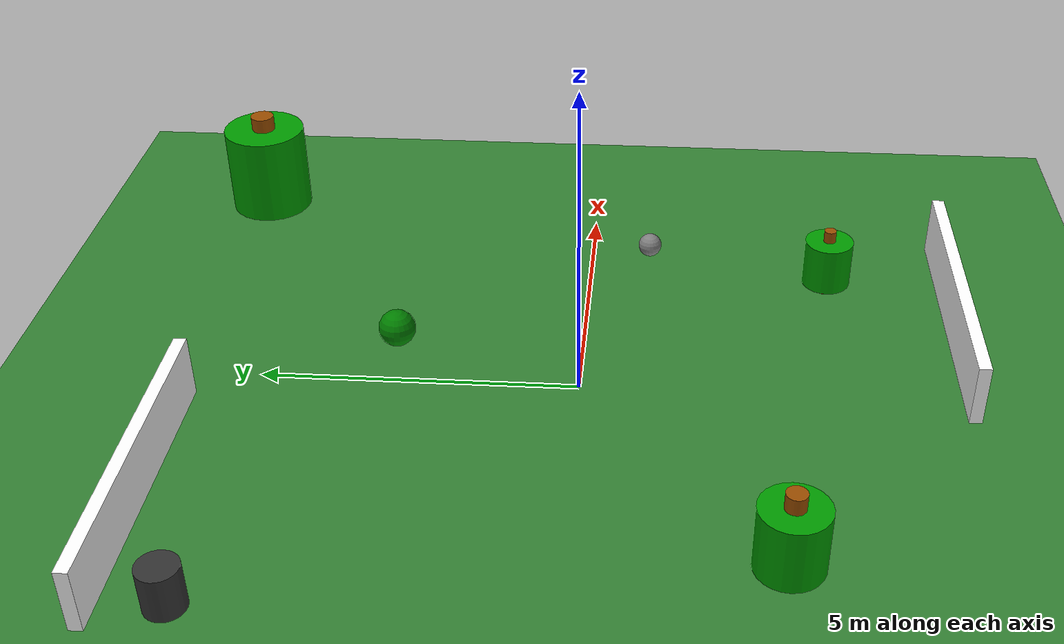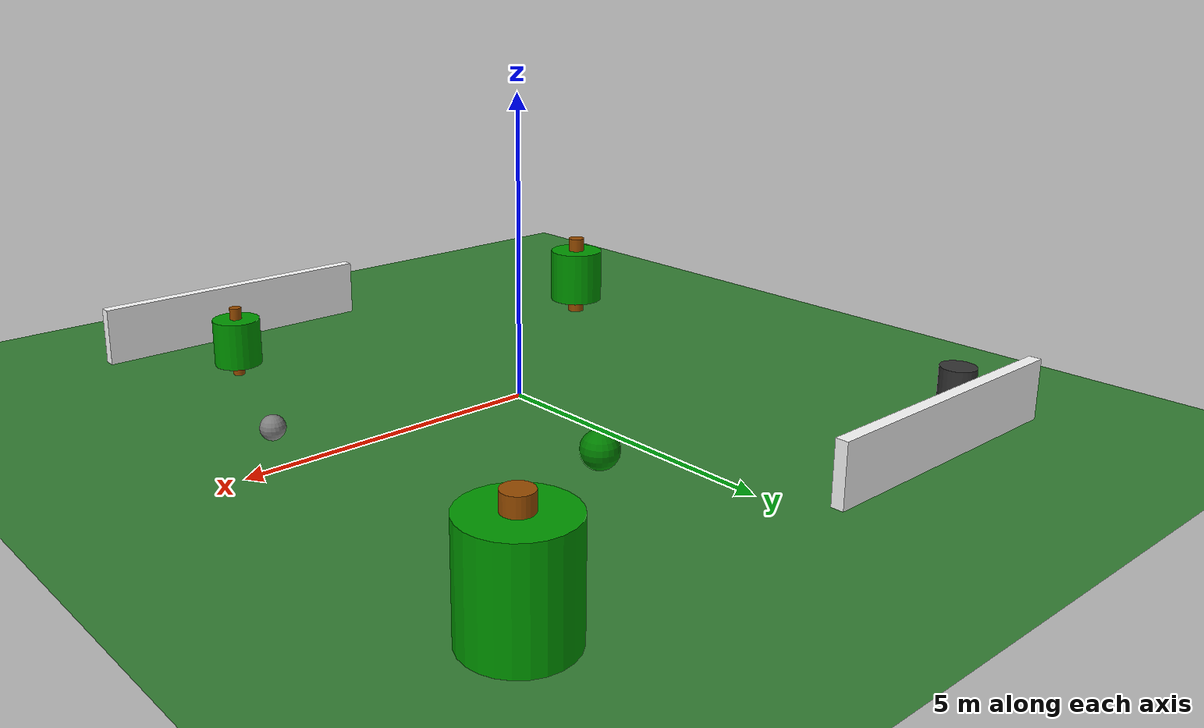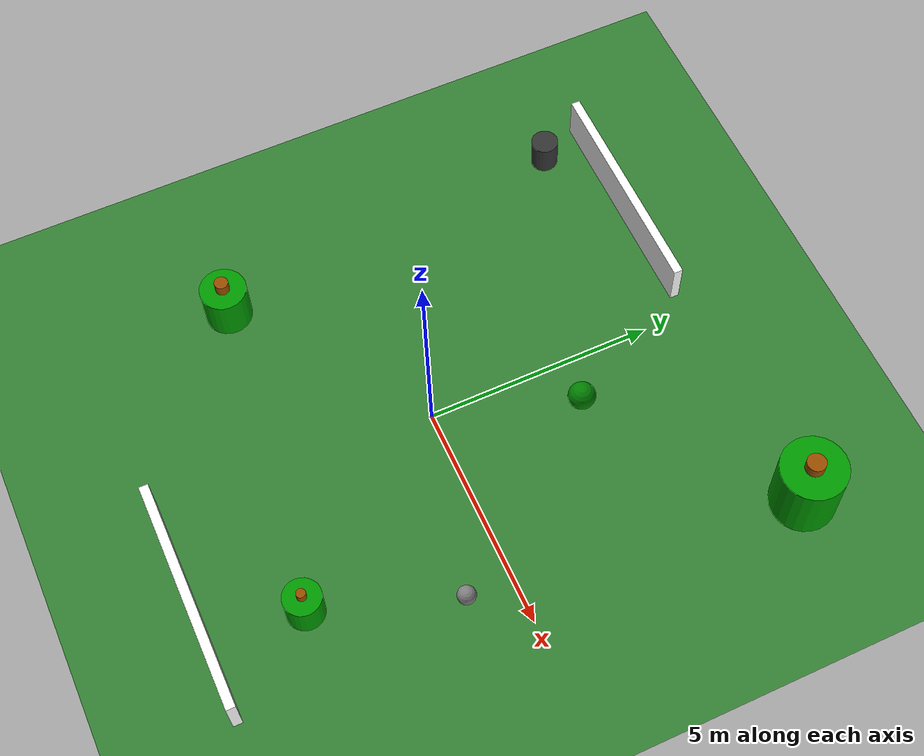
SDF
<sdf version="1.6">
  <world name="smartnav_world">
    <plugin name="gz::sim::systems::Physics" filename="gz-sim-physics-system"/>
    <plugin name="gz::sim::systems::UserCommands" filename="gz-sim-user-commands-system"/>
    <plugin name="gz::sim::systems::SceneBroadcaster" filename="gz-sim-scene-broadcaster-system"/>
    <plugin name="gz::sim::systems::Sensors" filename="gz-sim-sensors-system">
      <render_engine>ogre2</render_engine>
    </plugin>

    <!-- Scene: Sky color -->
    <scene>
      <ambient>0.5 0.7 1 1</ambient> <!-- light blue sky -->
      <background>0.53 0.81 0.92 1</background> <!-- blue background -->
    </scene>

    <!-- Sun -->
    <include>
      <uri>https://fuel.gazebosim.org/1.0/OpenRobotics/models/Sun</uri>
    </include>

    <!-- Ground with green grass / brown soil -->
    <model name="ground_plane_colored">
      <static>true</static>
      <link name="link">
        <collision name="collision">
          <geometry>
            <plane>
              <normal>0 0 1</normal>
              <size>20 20</size>
            </plane>
          </geometry>
        </collision>
        <visual name="visual">
          <geometry>
            <plane>
              <normal>0 0 1</normal>
              <size>20 20</size>
            </plane>
          </geometry>
          <material>
            <ambient>0.36 0.25 0.2 1</ambient> <!-- brown soil -->
            <diffuse>0.2 0.5 0.2 1</diffuse>  <!-- darker green grass -->
          </material>
        </visual>
      </link>
    </model>

    <!-- Wall 1 -->
    <model name="wall_1">
      <static>true</static>
      <link name="link">
        <collision name="collision">
          <geometry>
            <box>
              <size>5 0.2 1</size>
            </box>
          </geometry>
        </collision>
        <visual name="visual">
          <geometry>
            <box>
              <size>5 0.2 1</size>
            </box>
          </geometry>
          <material>
            <ambient>1 0 0 1</ambient> <!-- red -->
            <diffuse>1 1 1 1</diffuse> <!-- white -->
          </material>
        </visual>
      </link>
      <pose>2 -6 0.5 0 0 0</pose>
    </model>

    <!-- Wall 2 -->
    <model name="wall_2">
      <static>true</static>
      <link name="link">
        <collision name="collision">
          <geometry>
            <box>
              <size>5 0.2 1</size>
            </box>
          </geometry>
        </collision>
        <visual name="visual">
          <geometry>
            <box>
              <size>5 0.2 1</size>
            </box>
          </geometry>
          <material>
            <ambient>1 0 0 1</ambient> <!-- red -->
            <diffuse>1 1 1 1</diffuse> <!-- white -->
          </material>
        </visual>
      </link>
      <pose>-3 6 0.5 0 0 0</pose>
    </model>

    <!-- Trash bin (Poubelle) -->
    <model name="poubelle">
      <static>true</static>
      <link name="link">
        <collision name="collision">
          <geometry>
            <cylinder>
              <radius>0.3</radius>
              <length>0.7</length>
            </cylinder>
          </geometry>
        </collision>
        <visual name="visual">
          <geometry>
            <cylinder>
              <radius>0.3</radius>
              <length>0.7</length>
            </cylinder>
          </geometry>
          <material>
            <ambient>0.1 0.1 0.1 1</ambient>
            <diffuse>0.2 0.2 0.2 1</diffuse>
          </material>
        </visual>
      </link>
      <pose>-5 5 0.35 0 0 0</pose>
    </model>

    <!-- Main Tree -->
    <model name="tree_1">
      <static>true</static>
      <link name="trunk">
        <collision name="trunk_collision">
          <geometry>
            <cylinder>
              <radius>0.2</radius>
              <length>2</length>
            </cylinder>
          </geometry>
        </collision>
        <visual name="trunk_visual">
          <geometry>
            <cylinder>
              <radius>0.2</radius>
              <length>2</length>
            </cylinder>
          </geometry>
          <material>
            <ambient>0.4 0.2 0 1</ambient>
            <diffuse>0.6 0.3 0 1</diffuse>
          </material>
        </visual>
      </link>
      <link name="leaves">
        <collision name="leaves_collision">
          <geometry>
            <cylinder>
              <radius>0.7</radius>
              <length>1.5</length>
            </cylinder>
          </geometry>
        </collision>
        <visual name="leaves_visual">
          <geometry>
            <cylinder>
              <radius>0.7</radius>
              <length>1.5</length>
            </cylinder>
          </geometry>
          <material>
            <ambient>0 0.3 0 1</ambient>
            <diffuse>0 0.6 0 1</diffuse>
          </material>
        </visual>
      </link>
      <pose>5 6 1 0 0 0</pose>
    </model>

    <!-- Smaller Tree 2 -->
    <model name="tree_2">
      <static>true</static>
      <link name="trunk">
        <collision name="trunk_collision">
          <geometry>
            <cylinder>
              <radius>0.15</radius>
              <length>1.5</length>
            </cylinder>
          </geometry>
        </collision>
        <visual name="trunk_visual">
          <geometry>
            <cylinder>
              <radius>0.15</radius>
              <length>1.5</length>
            </cylinder>
          </geometry>
          <material>
            <ambient>0.4 0.2 0 1</ambient>
            <diffuse>0.6 0.3 0 1</diffuse>
          </material>
        </visual>
      </link>
      <link name="leaves">
        <collision name="leaves_collision">
          <geometry>
            <cylinder>
              <radius>0.5</radius>
              <length>1</length>
            </cylinder>
          </geometry>
        </collision>
        <visual name="leaves_visual">
          <geometry>
            <cylinder>
              <radius>0.5</radius>
              <length>1</length>
            </cylinder>
          </geometry>
          <material>
            <ambient>0 0.3 0 1</ambient>
            <diffuse>0 0.6 0 1</diffuse>
          </material>
        </visual>
      </link>
      <pose>-4 -3 0.75 0 0 0</pose>
    </model>

    <!-- Smaller Tree 3 -->
    <model name="tree_3">
      <static>true</static>
      <link name="trunk">
        <collision name="trunk_collision">
          <geometry>
            <cylinder>
              <radius>0.1</radius>
              <length>1.2</length>
            </cylinder>
          </geometry>
        </collision>
        <visual name="trunk_visual">
          <geometry>
            <cylinder>
              <radius>0.1</radius>
              <length>1.2</length>
            </cylinder>
          </geometry>
          <material>
            <ambient>0.4 0.2 0 1</ambient>
            <diffuse>0.6 0.3 0 1</diffuse>
          </material>
        </visual>
      </link>
      <link name="leaves">
        <collision name="leaves_collision">
          <geometry>
            <cylinder>
              <radius>0.4</radius>
              <length>0.8</length>
            </cylinder>
          </geometry>
        </collision>
        <visual name="leaves_visual">
          <geometry>
            <cylinder>
              <radius>0.4</radius>
              <length>0.8</length>
            </cylinder>
          </geometry>
          <material>
            <ambient>0 0.3 0 1</ambient>
            <diffuse>0 0.6 0 1</diffuse>
          </material>
        </visual>
      </link>
      <pose>3 -4 0.6 0 0 0</pose>
    </model>

    <!-- Small Bush 1 -->
    <model name="bush_1">
      <static>true</static>
      <link name="link">
        <collision name="collision">
          <geometry>
            <sphere>
              <radius>0.3</radius>
            </sphere>
          </geometry>
        </collision>
        <visual name="visual">
          <geometry>
            <sphere>
              <radius>0.3</radius>
            </sphere>
          </geometry>
          <material>
            <ambient>0 0.3 0 1</ambient>
            <diffuse>0 0.5 0 1</diffuse>
          </material>
        </visual>
      </link>
      <pose>1 3 0.3 0 0 0</pose>
    </model>

    <!-- Small Rock 1 -->
    <model name="rock_1">
      <static>true</static>
      <link name="link">
        <collision name="collision">
          <geometry>
            <sphere>
              <radius>0.2</radius>
            </sphere>
          </geometry>
        </collision>
        <visual name="visual">
          <geometry>
            <sphere>
              <radius>0.2</radius>
            </sphere>
          </geometry>
          <material>
            <ambient>0.3 0.3 0.3 1</ambient>
            <diffuse>0.5 0.5 0.5 1</diffuse>
          </material>
        </visual>
      </link>
      <pose>4 -1 0.2 0 0 0</pose>
    </model>

  </world>
</sdf>
